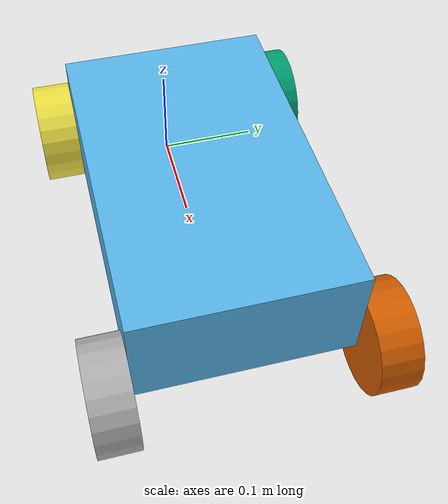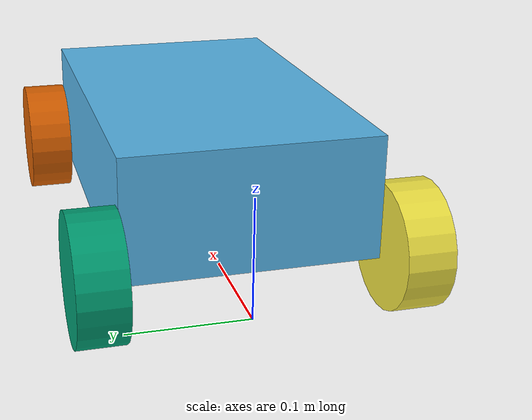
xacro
<?xml version="1.0"?>
<robot xmlns:xacro="http://www.ros.org/wiki/xacro" name="racecar">

  <!-- Geometry from racecar.xacro (Traxxas-based F1TENTH). TBC for the ARC car. -->
  <xacro:property name="wheelbase" value="0.3302"/>
  <xacro:property name="width" value="0.2032"/>
  <xacro:property name="height" value="0.1"/>
  <xacro:property name="ground_offset" value="0.04"/>
  <xacro:property name="wheel_radius" value="0.0508"/>
  <xacro:property name="wheel_length" value="0.0381"/>
  <xacro:property name="wheel_separation" value="${width + wheel_length}"/>

  <!-- Placeholder physics. TBC. -->
  <xacro:property name="chassis_mass" value="3.0"/>
  <xacro:property name="wheel_mass" value="0.1"/>
  <xacro:property name="hinge_mass" value="0.05"/>
  <!-- F1TENTH gym's max steering angle (rad). -->
  <xacro:property name="steering_limit" value="0.4189"/>

  <!-- 2D LiDAR, E-10 (Hokuyo UST-10LX, ADR-0001). Settings come from simulator/.env through the
       container's environment; the defaults here match E-10 for runs without it. -->
  <xacro:property name="lidar_rate" value="$(optenv LIDAR_RATE 40)"/>
  <xacro:property name="lidar_samples" value="$(optenv LIDAR_SAMPLES 1081)"/>
  <xacro:property name="lidar_fov_deg" value="$(optenv LIDAR_FOV_DEG 270)"/>
  <xacro:property name="lidar_range_min" value="$(optenv LIDAR_RANGE_MIN 0.06)"/>
  <xacro:property name="lidar_range_max" value="$(optenv LIDAR_RANGE_MAX 10)"/>
  <!-- Mount pose, base_link frame: front of the chassis, centred, above the body. TBC until the
       ARC CAD places it (systems/mechanical, layout-brief M2). -->
  <xacro:property name="lidar_x" value="0.265"/>
  <xacro:property name="lidar_z" value="${ground_offset + height + 0.03}"/>

  <xacro:property name="imu_rate" value="$(optenv IMU_RATE 1000)"/>

  <!-- base_link sits on the ground under the rear axle, as in racecar.xacro. -->
  <link name="base_link"/>

  <link name="chassis">
    <inertial>
      <origin xyz="${wheelbase/2} 0 ${ground_offset + height/2}"/>
      <mass value="${chassis_mass}"/>
      <inertia ixx="${chassis_mass/12*(width*width + height*height)}" ixy="0" ixz="0"
               iyy="${chassis_mass/12*(wheelbase*wheelbase + height*height)}" iyz="0"
               izz="${chassis_mass/12*(wheelbase*wheelbase + width*width)}"/>
    </inertial>
    <visual>
      <origin xyz="${wheelbase/2} 0 ${ground_offset + height/2}"/>
      <geometry>
        <box size="${wheelbase} ${width} ${height}"/>
      </geometry>
    </visual>
    <collision>
      <origin xyz="${wheelbase/2} 0 ${ground_offset + height/2}"/>
      <geometry>
        <box size="${wheelbase} ${width} ${height}"/>
      </geometry>
    </collision>
  </link>

  <joint name="base_to_chassis" type="fixed">
    <parent link="base_link"/>
    <child link="chassis"/>
  </joint>

  <!-- A wheel spinning about its y axis. Cylinder geometry is along z, so roll it onto y. -->
  <xacro:macro name="wheel" params="name">
    <link name="${name}_wheel">
      <inertial>
        <mass value="${wheel_mass}"/>
        <inertia ixx="${wheel_mass/12*(3*wheel_radius*wheel_radius + wheel_length*wheel_length)}" ixy="0" ixz="0"
                 iyy="${wheel_mass/2*wheel_radius*wheel_radius}" iyz="0"
                 izz="${wheel_mass/12*(3*wheel_radius*wheel_radius + wheel_length*wheel_length)}"/>
      </inertial>
      <visual>
        <origin rpy="${pi/2} 0 0"/>
        <geometry>
          <cylinder radius="${wheel_radius}" length="${wheel_length}"/>
        </geometry>
      </visual>
      <collision>
        <origin rpy="${pi/2} 0 0"/>
        <geometry>
          <cylinder radius="${wheel_radius}" length="${wheel_length}"/>
        </geometry>
      </collision>
    </link>
  </xacro:macro>

  <!-- Rear wheels: driven, not steered. -->
  <xacro:macro name="rear_wheel" params="side y">
    <xacro:wheel name="rear_${side}"/>
    <joint name="rear_${side}_wheel_joint" type="continuous">
      <parent link="base_link"/>
      <child link="rear_${side}_wheel"/>
      <origin xyz="0 ${y} ${wheel_radius}"/>
      <axis xyz="0 1 0"/>
    </joint>
  </xacro:macro>

  <!-- Front wheels: a steering hinge (revolute about z), then a driven wheel. -->
  <xacro:macro name="front_wheel" params="side y">
    <link name="front_${side}_hinge">
      <inertial>
        <mass value="${hinge_mass}"/>
        <inertia ixx="1e-5" ixy="0" ixz="0" iyy="1e-5" iyz="0" izz="1e-5"/>
      </inertial>
    </link>
    <joint name="front_${side}_steering_joint" type="revolute">
      <parent link="base_link"/>
      <child link="front_${side}_hinge"/>
      <origin xyz="${wheelbase} ${y} ${wheel_radius}"/>
      <axis xyz="0 0 1"/>
      <limit lower="${-steering_limit}" upper="${steering_limit}" effort="10" velocity="5"/>
    </joint>
    <xacro:wheel name="front_${side}"/>
    <joint name="front_${side}_wheel_joint" type="continuous">
      <parent link="front_${side}_hinge"/>
      <child link="front_${side}_wheel"/>
      <axis xyz="0 1 0"/>
    </joint>
  </xacro:macro>

  <xacro:rear_wheel side="left" y="${wheel_separation/2}"/>
  <xacro:rear_wheel side="right" y="${-wheel_separation/2}"/>
  <xacro:front_wheel side="left" y="${wheel_separation/2}"/>
  <xacro:front_wheel side="right" y="${-wheel_separation/2}"/>

  <!-- LiDAR: scans in the plane of its link, x forward, angles counter-clockwise from x. -->
  <link name="lidar"/>
  <joint name="base_to_lidar" type="fixed">
    <parent link="base_link"/>
    <child link="lidar"/>
    <origin xyz="${lidar_x} 0 ${lidar_z}"/>
  </joint>
  <!-- Gazebo renders it only while something subscribes to its topic (the Sensors system skips
       sensors without subscribers), so a lazy chain up to the ground station turns it off. -->
  <gazebo reference="lidar">
    <sensor name="lidar" type="gpu_lidar">
      <topic>/model/racecar/scan</topic>
      <gz_frame_id>lidar</gz_frame_id>
      <update_rate>${lidar_rate}</update_rate>
      <always_on>true</always_on>
      <lidar>
        <scan>
          <horizontal>
            <samples>${lidar_samples}</samples>
            <resolution>1</resolution>
            <min_angle>${-radians(lidar_fov_deg) / 2}</min_angle>
            <max_angle>${radians(lidar_fov_deg) / 2}</max_angle>
          </horizontal>
          <vertical>
            <samples>1</samples>
            <resolution>1</resolution>
            <min_angle>0</min_angle>
            <max_angle>0</max_angle>
          </vertical>
        </scan>
        <range>
          <min>${lidar_range_min}</min>
          <max>${lidar_range_max}</max>
          <resolution>0.001</resolution>
        </range>
      </lidar>
    </sensor>
  </gazebo>

  <link name="imu_cg"/>
  <joint name="base_to_imu_cg" type="fixed">
    <parent link="base_link"/>
    <child link="imu_cg"/>
    <origin xyz="${wheelbase/2} 0 ${ground_offset + height/2}"/>
  </joint>
  <gazebo reference="imu_cg">
    <sensor name="imu_cg" type="imu">
      <topic>/model/racecar/imu/cg</topic>
      <gz_frame_id>imu_cg</gz_frame_id>
      <update_rate>${imu_rate}</update_rate>
      <always_on>true</always_on>
    </sensor>
  </gazebo>

  <gazebo>
    <plugin filename="gz-sim-ackermann-steering-system" name="gz::sim::systems::AckermannSteering">
      <left_joint>front_left_wheel_joint</left_joint>
      <left_joint>rear_left_wheel_joint</left_joint>
      <right_joint>front_right_wheel_joint</right_joint>
      <right_joint>rear_right_wheel_joint</right_joint>
      <left_steering_joint>front_left_steering_joint</left_steering_joint>
      <right_steering_joint>front_right_steering_joint</right_steering_joint>
      <kingpin_width>${wheel_separation}</kingpin_width>
      <steering_limit>${steering_limit}</steering_limit>
      <wheel_base>${wheelbase}</wheel_base>
      <wheel_separation>${wheel_separation}</wheel_separation>
      <wheel_radius>${wheel_radius}</wheel_radius>
      <topic>/model/racecar/cmd_vel</topic>
      <odom_topic>/model/racecar/odometry</odom_topic>
      <odom_publish_frequency>50</odom_publish_frequency>
      <frame_id>odom</frame_id>
      <child_frame_id>base_link</child_frame_id>
    </plugin>
    <!-- Ground truth: the car's actual world pose, for the viewer and for scoring later.
         Internal only; the algorithm must never subscribe to it. -->
    <plugin filename="gz-sim-odometry-publisher-system" name="gz::sim::systems::OdometryPublisher">
      <odom_frame>world</odom_frame>
      <robot_base_frame>base_link</robot_base_frame>
      <odom_topic>/model/racecar/ground_truth</odom_topic>
      <tf_topic>/model/racecar/ground_truth/tf</tf_topic>
      <odom_publish_frequency>50</odom_publish_frequency>
      <dimensions>3</dimensions>
    </plugin>
    <plugin filename="gz-sim-joint-state-publisher-system" name="gz::sim::systems::JointStatePublisher">
      <joint_name>front_left_wheel_joint</joint_name>
      <joint_name>front_right_wheel_joint</joint_name>
      <joint_name>rear_left_wheel_joint</joint_name>
      <joint_name>rear_right_wheel_joint</joint_name>
      <topic>/model/racecar/wheel_joints</topic>
      <update_rate>1000</update_rate>
    </plugin>
  </gazebo>

</robot>
